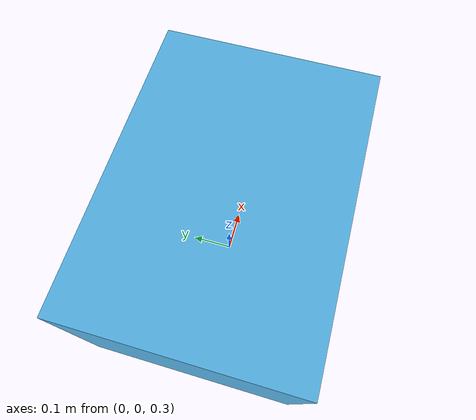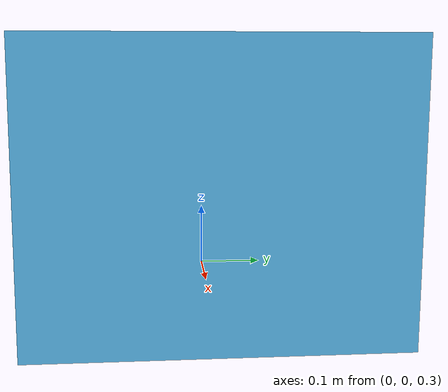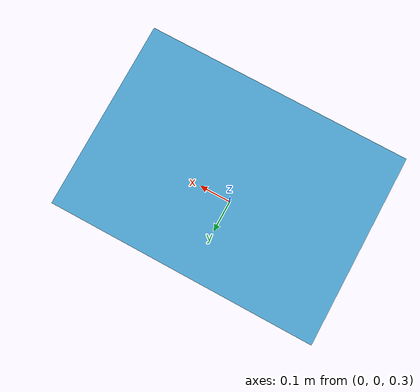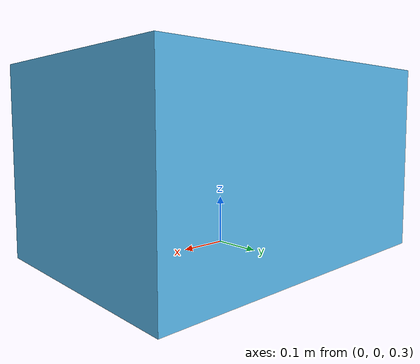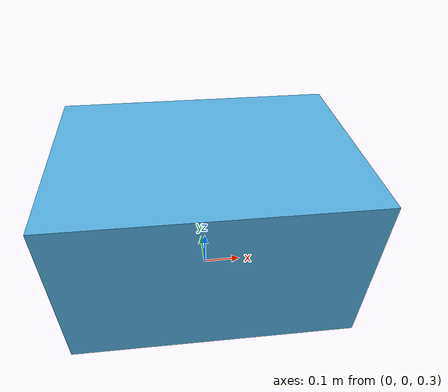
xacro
<?xml version="1.0"?>
<robot xmlns:xacro="http://www.ros.org/wiki/xacro" name="sqrl">
<xacro:property name="PI" value="3.1415926535897931"/>

<material name="dark_grey"><color rgba="0.2 0.2 0.2 1.0" /></material>
<material name="light_grey"><color rgba="0.4 0.4 0.4 1.0" /></material>
<material name="yellow"><color rgba="0.8 0.8 0.0 1.0" /></material>
<material name="black"><color rgba="0.15 0.15 0.15 1.0" /></material>

<!--For base_link there is no inertia needed because its a non-functional element-->
<!-- Length = X     Width = Y   Height = Z -->
<!--chassis :  length=0.7 width=0.5 height=0.4    mass=5kg, -->
<!--frame :    length=0.7 width=0.5 height=0.45     mass=0.5kg,-->
<!--motors :   cylinder radius=0.06  height=0.06  mass=0.5kg-->
<!--wheels :   cylinder radius=0.21  width=0.09  mass=0.46kg (Assumed 10lbs)-->
<xacro:property name="CHASSIS_MASS" value="5"/>
<xacro:property name="CHASSIS_LENGTH" value="0.7"/>
<xacro:property name="CHASSIS_WIDTH" value="0.5"/>
<xacro:property name="CHASSIS_HEIGHT" value="0.4"/>
<xacro:property name="CHASSIS_HEIGHT_OFFSET" value="0.12"/>
<xacro:property name="CHASSIS_IXX" value="0.170833333333"/>
<xacro:property name="CHASSIS_IYY" value="0.270833333333"/>
<xacro:property name="CHASSIS_IZZ" value="0.308333333333"/>
<xacro:macro name="CHASSIS_INTERIA">
    <inertial>
        <origin xyz="0 0 ${CHASSIS_HEIGHT_OFFSET}" rpy="0 0 0"/>
        <mass value="${CHASSIS_MASS}"/>
        <inertia ixx="${CHASSIS_IXX}" ixy="0.0" ixz="0.0"
                 iyy="${CHASSIS_IYY}" iyz="0.0"
                 izz="${CHASSIS_IZZ}"/>
    </inertial>
</xacro:macro>

<xacro:property name="FRAME_MASS" value="0.5"/>
<xacro:property name="MOTOR_MASS" value="0.5"/>
<xacro:property name="WHEEL_MASS" value="0.46"/>
<!--######################## GAZEBO REFERENCE XACROS ########################-->
<!--######################## GAZEBO REFERENCE XACROS ########################-->
<!--######################## GAZEBO REFERENCE XACROS ########################-->
<!--######################## GAZEBO REFERENCE XACROS ########################-->

<xacro:macro name="generate_gazebo_reference" params="link_name color=White">
    <!-- If 'color' param is unspecified, it defaults to White -->
    <gazebo reference="${link_name}">
        <kp>1000.0</kp>
        <kd>1000.0</kd>
        <mu1>10.0</mu1>
        <mu2>10.0</mu2>
        <xacro:if value="${color == ''}">
            <material>Gazebo/White</material>
        </xacro:if>
        <xacro:if value="${color != ''}">
            <material>Gazebo/${color}</material>
        </xacro:if>
    </gazebo>
</xacro:macro>

<!-- ################### LINK Definitions ############################# -->
<!-- ################### LINK Definitions ############################# -->
<!-- ################### LINK Definitions ############################# -->
<!-- ################### LINK Definitions ############################# -->
<!-- ################### LINK Definitions ############################# -->
<link name="base_link"></link>

  <joint name="base_link_joint" type="fixed">
    <origin xyz="0 0 0" rpy="0 0 0" />
    <parent link="base_link"/>
    <child link="chassis_link" />
  </joint>

  <link name="chassis_link">
    <visual>
      <origin xyz="0 0 ${4*CHASSIS_HEIGHT_OFFSET}" rpy="0 0 0"/>
      <geometry>
        <box size="${CHASSIS_LENGTH} ${CHASSIS_WIDTH} ${CHASSIS_HEIGHT}"/>
      </geometry>
    </visual>
    <collision>
      <origin xyz="0 0 ${CHASSIS_HEIGHT_OFFSET}"/>
      <geometry>
        <box size="${CHASSIS_LENGTH} ${CHASSIS_WIDTH} ${CHASSIS_HEIGHT}"/>
      </geometry>
    </collision>
    <xacro:CHASSIS_INTERIA/>
  </link>

<!-- ################### MATERIALS Definitions ############################# -->
<!-- ################### MATERIALS Definitions ############################# -->
<!-- ################### MATERIALS Definitions ############################# -->
<!-- ################### MATERIALS Definitions ############################# -->
<!-- ################### MATERIALS Definitions ############################# -->
    <xacro:generate_gazebo_reference link_name="chassis_link" color="White"/>

</robot>
